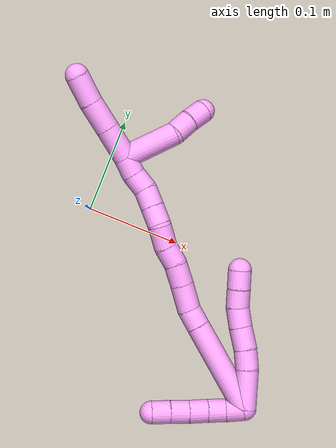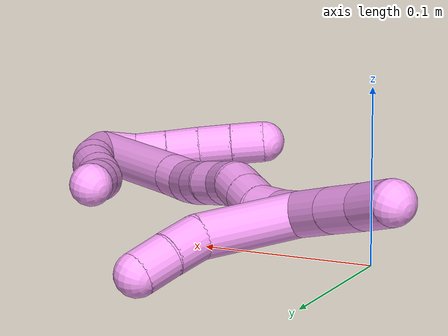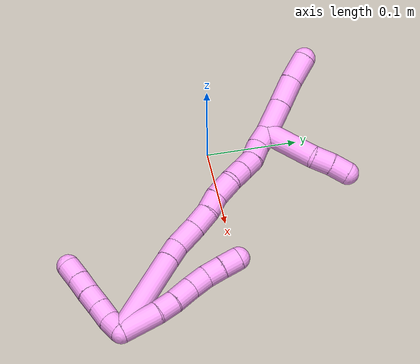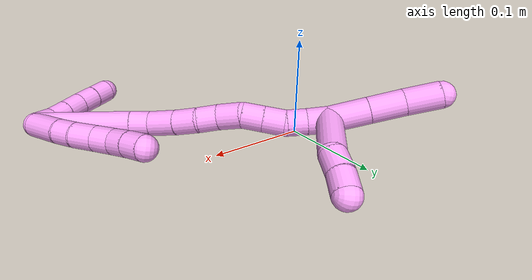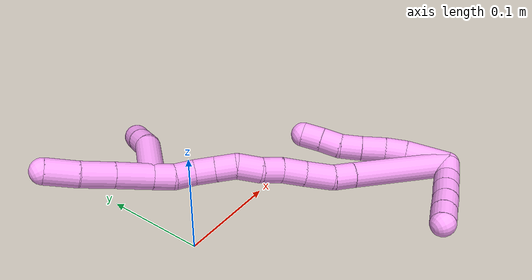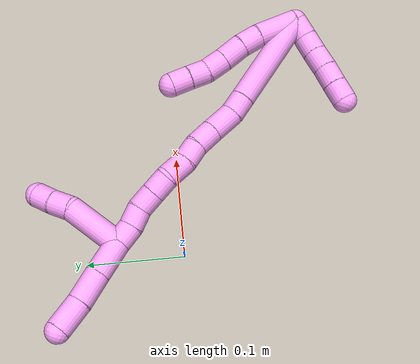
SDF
<sdf version="1.7">
 <world name="default">
  <model name="4">
   <static>0</static>
   <link name="4">
    <collision name="collision-cylinder-e_1_2_8">
     <pose>-0.00615 0.015316 -0.013606 -2.29716 -0.29162 0.631888</pose>
     <geometry><cylinder><radius>0.0125</radius><length>0.042779</length></cylinder></geometry>
     <surface>
      <friction><ode><mu>1.16</mu><mu2>1.16</mu2><slip1>0</slip1><slip2>0</slip2></ode></friction>
      <contact><ode><kp>1e+06</kp><kd>1</kd><max_vel>0</max_vel><min_depth>0.001</min_depth></ode></contact>
     </surface>
    </collision>
    <visual name="visual-cylinder-e_1_2_8">
     <pose>-0.00615 0.015316 -0.013606 -2.29716 -0.29162 0.631888</pose>
     <geometry><cylinder><radius>0.0125</radius><length>0.042779</length></cylinder></geometry>
     <material><ambient>1 0.65098 0.996078 1</ambient></material>
    </visual>
    <collision name="collision-cylinder-e_2_8_9">
     <pose>-0.015013 0.037226 -0.035146 -2.44807 -0.257258 0.687446</pose>
     <geometry><cylinder><radius>0.0125</radius><length>0.021336</length></cylinder></geometry>
     <surface>
      <friction><ode><mu>1.16</mu><mu2>1.16</mu2><slip1>0</slip1><slip2>0</slip2></ode></friction>
      <contact><ode><kp>1e+06</kp><kd>1</kd><max_vel>0</max_vel><min_depth>0.001</min_depth></ode></contact>
     </surface>
    </collision>
    <visual name="visual-cylinder-e_2_8_9">
     <pose>-0.015013 0.037226 -0.035146 -2.44807 -0.257258 0.687446</pose>
     <geometry><cylinder><radius>0.0125</radius><length>0.021336</length></cylinder></geometry>
     <material><ambient>1 0.65098 0.996078 1</ambient></material>
    </visual>
    <collision name="collision-cylinder-e_3_9_10">
     <pose>-0.020577 0.050091 -0.053116 -2.58321 -0.236321 0.785207</pose>
     <geometry><cylinder><radius>0.0125</radius><length>0.024344</length></cylinder></geometry>
     <surface>
      <friction><ode><mu>1.16</mu><mu2>1.16</mu2><slip1>0</slip1><slip2>0</slip2></ode></friction>
      <contact><ode><kp>1e+06</kp><kd>1</kd><max_vel>0</max_vel><min_depth>0.001</min_depth></ode></contact>
     </surface>
    </collision>
    <visual name="visual-cylinder-e_3_9_10">
     <pose>-0.020577 0.050091 -0.053116 -2.58321 -0.236321 0.785207</pose>
     <geometry><cylinder><radius>0.0125</radius><length>0.024344</length></cylinder></geometry>
     <material><ambient>1 0.65098 0.996078 1</ambient></material>
    </visual>
    <collision name="collision-cylinder-e_4_10_11">
     <pose>-0.026132 0.062373 -0.071548 -2.52014 -0.256162 0.762805</pose>
     <geometry><cylinder><radius>0.0125</radius><length>0.02135</length></cylinder></geometry>
     <surface>
      <friction><ode><mu>1.16</mu><mu2>1.16</mu2><slip1>0</slip1><slip2>0</slip2></ode></friction>
      <contact><ode><kp>1e+06</kp><kd>1</kd><max_vel>0</max_vel><min_depth>0.001</min_depth></ode></contact>
     </surface>
    </collision>
    <visual name="visual-cylinder-e_4_10_11">
     <pose>-0.026132 0.062373 -0.071548 -2.52014 -0.256162 0.762805</pose>
     <geometry><cylinder><radius>0.0125</radius><length>0.02135</length></cylinder></geometry>
     <material><ambient>1 0.65098 0.996078 1</ambient></material>
    </visual>
    <collision name="collision-cylinder-e_5_11_12">
     <pose>-0.032402 0.075412 -0.086109 -2.29095 -0.364415 0.772647</pose>
     <geometry><cylinder><radius>0.0125</radius><length>0.02001</length></cylinder></geometry>
     <surface>
      <friction><ode><mu>1.16</mu><mu2>1.16</mu2><slip1>0</slip1><slip2>0</slip2></ode></friction>
      <contact><ode><kp>1e+06</kp><kd>1</kd><max_vel>0</max_vel><min_depth>0.001</min_depth></ode></contact>
     </surface>
    </collision>
    <visual name="visual-cylinder-e_5_11_12">
     <pose>-0.032402 0.075412 -0.086109 -2.29095 -0.364415 0.772647</pose>
     <geometry><cylinder><radius>0.0125</radius><length>0.02001</length></cylinder></geometry>
     <material><ambient>1 0.65098 0.996078 1</ambient></material>
    </visual>
    <collision name="collision-cylinder-e_6_12_6">
     <pose>-0.039057 0.089584 -0.098695 -2.3029 -0.311123 0.676558</pose>
     <geometry><cylinder><radius>0.0125</radius><length>0.020181</length></cylinder></geometry>
     <surface>
      <friction><ode><mu>1.16</mu><mu2>1.16</mu2><slip1>0</slip1><slip2>0</slip2></ode></friction>
      <contact><ode><kp>1e+06</kp><kd>1</kd><max_vel>0</max_vel><min_depth>0.001</min_depth></ode></contact>
     </surface>
    </collision>
    <visual name="visual-cylinder-e_6_12_6">
     <pose>-0.039057 0.089584 -0.098695 -2.3029 -0.311123 0.676558</pose>
     <geometry><cylinder><radius>0.0125</radius><length>0.020181</length></cylinder></geometry>
     <material><ambient>1 0.65098 0.996078 1</ambient></material>
    </visual>
    <collision name="collision-cylinder-e_1_2_13">
     <pose>0.000445 -0.007661 -0.006412 2.26774 0.044534 0.095298</pose>
     <geometry><cylinder><radius>0.0125</radius><length>0.02</length></cylinder></geometry>
     <surface>
      <friction><ode><mu>1.16</mu><mu2>1.16</mu2><slip1>0</slip1><slip2>0</slip2></ode></friction>
      <contact><ode><kp>1e+06</kp><kd>1</kd><max_vel>0</max_vel><min_depth>0.001</min_depth></ode></contact>
     </surface>
    </collision>
    <visual name="visual-cylinder-e_1_2_13">
     <pose>0.000445 -0.007661 -0.006412 2.26774 0.044534 0.095298</pose>
     <geometry><cylinder><radius>0.0125</radius><length>0.02</length></cylinder></geometry>
     <material><ambient>1 0.65098 0.996078 1</ambient></material>
    </visual>
    <collision name="collision-cylinder-e_2_13_14">
     <pose>-0.000829 -0.022673 -0.019382 2.29914 -0.172792 -0.381912</pose>
     <geometry><cylinder><radius>0.0125</radius><length>0.02</length></cylinder></geometry>
     <surface>
      <friction><ode><mu>1.16</mu><mu2>1.16</mu2><slip1>0</slip1><slip2>0</slip2></ode></friction>
      <contact><ode><kp>1e+06</kp><kd>1</kd><max_vel>0</max_vel><min_depth>0.001</min_depth></ode></contact>
     </surface>
    </collision>
    <visual name="visual-cylinder-e_2_13_14">
     <pose>-0.000829 -0.022673 -0.019382 2.29914 -0.172792 -0.381912</pose>
     <geometry><cylinder><radius>0.0125</radius><length>0.02</length></cylinder></geometry>
     <material><ambient>1 0.65098 0.996078 1</ambient></material>
    </visual>
    <collision name="collision-cylinder-e_3_14_15">
     <pose>-0.004305 -0.037581 -0.032249 2.26649 -0.176585 -0.374049</pose>
     <geometry><cylinder><radius>0.0125</radius><length>0.02</length></cylinder></geometry>
     <surface>
      <friction><ode><mu>1.16</mu><mu2>1.16</mu2><slip1>0</slip1><slip2>0</slip2></ode></friction>
      <contact><ode><kp>1e+06</kp><kd>1</kd><max_vel>0</max_vel><min_depth>0.001</min_depth></ode></contact>
     </surface>
    </collision>
    <visual name="visual-cylinder-e_3_14_15">
     <pose>-0.004305 -0.037581 -0.032249 2.26649 -0.176585 -0.374049</pose>
     <geometry><cylinder><radius>0.0125</radius><length>0.02</length></cylinder></geometry>
     <material><ambient>1 0.65098 0.996078 1</ambient></material>
    </visual>
    <collision name="collision-cylinder-e_4_15_16">
     <pose>-0.007774 -0.052363 -0.045257 2.31837 -0.172096 -0.390171</pose>
     <geometry><cylinder><radius>0.0125</radius><length>0.02</length></cylinder></geometry>
     <surface>
      <friction><ode><mu>1.16</mu><mu2>1.16</mu2><slip1>0</slip1><slip2>0</slip2></ode></friction>
      <contact><ode><kp>1e+06</kp><kd>1</kd><max_vel>0</max_vel><min_depth>0.001</min_depth></ode></contact>
     </surface>
    </collision>
    <visual name="visual-cylinder-e_4_15_16">
     <pose>-0.007774 -0.052363 -0.045257 2.31837 -0.172096 -0.390171</pose>
     <geometry><cylinder><radius>0.0125</radius><length>0.02</length></cylinder></geometry>
     <material><ambient>1 0.65098 0.996078 1</ambient></material>
    </visual>
    <collision name="collision-cylinder-e_5_16_5">
     <pose>-0.010967 -0.066995 -0.058508 2.29512 -0.148558 -0.327442</pose>
     <geometry><cylinder><radius>0.0125</radius><length>0.02</length></cylinder></geometry>
     <surface>
      <friction><ode><mu>1.16</mu><mu2>1.16</mu2><slip1>0</slip1><slip2>0</slip2></ode></friction>
      <contact><ode><kp>1e+06</kp><kd>1</kd><max_vel>0</max_vel><min_depth>0.001</min_depth></ode></contact>
     </surface>
    </collision>
    <visual name="visual-cylinder-e_5_16_5">
     <pose>-0.010967 -0.066995 -0.058508 2.29512 -0.148558 -0.327442</pose>
     <geometry><cylinder><radius>0.0125</radius><length>0.02</length></cylinder></geometry>
     <material><ambient>1 0.65098 0.996078 1</ambient></material>
    </visual>
    <collision name="collision-cylinder-e_1_2_17">
     <pose>-0.012926 0.012258 -0.047391 -2.88849 -0.258158 1.59078</pose>
     <geometry><cylinder><radius>0.0125</radius><length>0.101258</length></cylinder></geometry>
     <surface>
      <friction><ode><mu>1.16</mu><mu2>1.16</mu2><slip1>0</slip1><slip2>0</slip2></ode></friction>
      <contact><ode><kp>1e+06</kp><kd>1</kd><max_vel>0</max_vel><min_depth>0.001</min_depth></ode></contact>
     </surface>
    </collision>
    <visual name="visual-cylinder-e_1_2_17">
     <pose>-0.012926 0.012258 -0.047391 -2.88849 -0.258158 1.59078</pose>
     <geometry><cylinder><radius>0.0125</radius><length>0.101258</length></cylinder></geometry>
     <material><ambient>1 0.65098 0.996078 1</ambient></material>
    </visual>
    <collision name="collision-cylinder-e_2_17_18">
     <pose>-0.028219 0.02708 -0.10434 -2.87947 -0.234931 1.46038</pose>
     <geometry><cylinder><radius>0.0125</radius><length>0.020349</length></cylinder></geometry>
     <surface>
      <friction><ode><mu>1.16</mu><mu2>1.16</mu2><slip1>0</slip1><slip2>0</slip2></ode></friction>
      <contact><ode><kp>1e+06</kp><kd>1</kd><max_vel>0</max_vel><min_depth>0.001</min_depth></ode></contact>
     </surface>
    </collision>
    <visual name="visual-cylinder-e_2_17_18">
     <pose>-0.028219 0.02708 -0.10434 -2.87947 -0.234931 1.46038</pose>
     <geometry><cylinder><radius>0.0125</radius><length>0.020349</length></cylinder></geometry>
     <material><ambient>1 0.65098 0.996078 1</ambient></material>
    </visual>
    <collision name="collision-cylinder-e_3_18_19">
     <pose>-0.036046 0.035978 -0.125575 -2.64462 -0.389819 1.32242</pose>
     <geometry><cylinder><radius>0.0125</radius><length>0.028724</length></cylinder></geometry>
     <surface>
      <friction><ode><mu>1.16</mu><mu2>1.16</mu2><slip1>0</slip1><slip2>0</slip2></ode></friction>
      <contact><ode><kp>1e+06</kp><kd>1</kd><max_vel>0</max_vel><min_depth>0.001</min_depth></ode></contact>
     </surface>
    </collision>
    <visual name="visual-cylinder-e_3_18_19">
     <pose>-0.036046 0.035978 -0.125575 -2.64462 -0.389819 1.32242</pose>
     <geometry><cylinder><radius>0.0125</radius><length>0.028724</length></cylinder></geometry>
     <material><ambient>1 0.65098 0.996078 1</ambient></material>
    </visual>
    <collision name="collision-cylinder-e_4_19_20">
     <pose>-0.046494 0.047061 -0.146774 -2.67888 -0.438522 1.51527</pose>
     <geometry><cylinder><radius>0.0125</radius><length>0.023506</length></cylinder></geometry>
     <surface>
      <friction><ode><mu>1.16</mu><mu2>1.16</mu2><slip1>0</slip1><slip2>0</slip2></ode></friction>
      <contact><ode><kp>1e+06</kp><kd>1</kd><max_vel>0</max_vel><min_depth>0.001</min_depth></ode></contact>
     </surface>
    </collision>
    <visual name="visual-cylinder-e_4_19_20">
     <pose>-0.046494 0.047061 -0.146774 -2.67888 -0.438522 1.51527</pose>
     <geometry><cylinder><radius>0.0125</radius><length>0.023506</length></cylinder></geometry>
     <material><ambient>1 0.65098 0.996078 1</ambient></material>
    </visual>
    <collision name="collision-cylinder-e_5_20_21">
     <pose>-0.055363 0.053925 -0.165454 -2.91467 -0.391437 2.09828</pose>
     <geometry><cylinder><radius>0.0125</radius><length>0.020336</length></cylinder></geometry>
     <surface>
      <friction><ode><mu>1.16</mu><mu2>1.16</mu2><slip1>0</slip1><slip2>0</slip2></ode></friction>
      <contact><ode><kp>1e+06</kp><kd>1</kd><max_vel>0</max_vel><min_depth>0.001</min_depth></ode></contact>
     </surface>
    </collision>
    <visual name="visual-cylinder-e_5_20_21">
     <pose>-0.055363 0.053925 -0.165454 -2.91467 -0.391437 2.09828</pose>
     <geometry><cylinder><radius>0.0125</radius><length>0.020336</length></cylinder></geometry>
     <material><ambient>1 0.65098 0.996078 1</ambient></material>
    </visual>
    <collision name="collision-cylinder-e_6_21_22">
     <pose>-0.064246 0.061285 -0.184296 -2.64526 -0.426421 1.4141</pose>
     <geometry><cylinder><radius>0.0125</radius><length>0.024194</length></cylinder></geometry>
     <surface>
      <friction><ode><mu>1.16</mu><mu2>1.16</mu2><slip1>0</slip1><slip2>0</slip2></ode></friction>
      <contact><ode><kp>1e+06</kp><kd>1</kd><max_vel>0</max_vel><min_depth>0.001</min_depth></ode></contact>
     </surface>
    </collision>
    <visual name="visual-cylinder-e_6_21_22">
     <pose>-0.064246 0.061285 -0.184296 -2.64526 -0.426421 1.4141</pose>
     <geometry><cylinder><radius>0.0125</radius><length>0.024194</length></cylinder></geometry>
     <material><ambient>1 0.65098 0.996078 1</ambient></material>
    </visual>
    <collision name="collision-cylinder-e_7_22_23">
     <pose>-0.070297 0.070466 -0.203346 -2.74368 -0.102714 0.499243</pose>
     <geometry><cylinder><radius>0.0125</radius><length>0.020424</length></cylinder></geometry>
     <surface>
      <friction><ode><mu>1.16</mu><mu2>1.16</mu2><slip1>0</slip1><slip2>0</slip2></ode></friction>
      <contact><ode><kp>1e+06</kp><kd>1</kd><max_vel>0</max_vel><min_depth>0.001</min_depth></ode></contact>
     </surface>
    </collision>
    <visual name="visual-cylinder-e_7_22_23">
     <pose>-0.070297 0.070466 -0.203346 -2.74368 -0.102714 0.499243</pose>
     <geometry><cylinder><radius>0.0125</radius><length>0.020424</length></cylinder></geometry>
     <material><ambient>1 0.65098 0.996078 1</ambient></material>
    </visual>
    <collision name="collision-cylinder-e_8_23_24">
     <pose>-0.072381 0.078342 -0.222163 -2.74668 -0.100957 0.494707</pose>
     <geometry><cylinder><radius>0.0125</radius><length>0.020588</length></cylinder></geometry>
     <surface>
      <friction><ode><mu>1.16</mu><mu2>1.16</mu2><slip1>0</slip1><slip2>0</slip2></ode></friction>
      <contact><ode><kp>1e+06</kp><kd>1</kd><max_vel>0</max_vel><min_depth>0.001</min_depth></ode></contact>
     </surface>
    </collision>
    <visual name="visual-cylinder-e_8_23_24">
     <pose>-0.072381 0.078342 -0.222163 -2.74668 -0.100957 0.494707</pose>
     <geometry><cylinder><radius>0.0125</radius><length>0.020588</length></cylinder></geometry>
     <material><ambient>1 0.65098 0.996078 1</ambient></material>
    </visual>
    <collision name="collision-cylinder-e_9_24_25">
     <pose>-0.075782 0.083156 -0.241358 -3.0522 -0.237101 2.42314</pose>
     <geometry><cylinder><radius>0.0125</radius><length>0.020125</length></cylinder></geometry>
     <surface>
      <friction><ode><mu>1.16</mu><mu2>1.16</mu2><slip1>0</slip1><slip2>0</slip2></ode></friction>
      <contact><ode><kp>1e+06</kp><kd>1</kd><max_vel>0</max_vel><min_depth>0.001</min_depth></ode></contact>
     </surface>
    </collision>
    <visual name="visual-cylinder-e_9_24_25">
     <pose>-0.075782 0.083156 -0.241358 -3.0522 -0.237101 2.42314</pose>
     <geometry><cylinder><radius>0.0125</radius><length>0.020125</length></cylinder></geometry>
     <material><ambient>1 0.65098 0.996078 1</ambient></material>
    </visual>
    <collision name="collision-cylinder-e_10_25_1">
     <pose>-0.081967 0.086915 -0.260161 -2.83322 -0.382098 1.78775</pose>
     <geometry><cylinder><radius>0.0125</radius><length>0.020497</length></cylinder></geometry>
     <surface>
      <friction><ode><mu>1.16</mu><mu2>1.16</mu2><slip1>0</slip1><slip2>0</slip2></ode></friction>
      <contact><ode><kp>1e+06</kp><kd>1</kd><max_vel>0</max_vel><min_depth>0.001</min_depth></ode></contact>
     </surface>
    </collision>
    <visual name="visual-cylinder-e_10_25_1">
     <pose>-0.081967 0.086915 -0.260161 -2.83322 -0.382098 1.78775</pose>
     <geometry><cylinder><radius>0.0125</radius><length>0.020497</length></cylinder></geometry>
     <material><ambient>1 0.65098 0.996078 1</ambient></material>
    </visual>
    <collision name="collision-cylinder-e_1_1_26">
     <pose>-0.083306 0.117577 -0.260854 -1.27817 0.085354 -0.063446</pose>
     <geometry><cylinder><radius>0.0125</radius><length>0.05823</length></cylinder></geometry>
     <surface>
      <friction><ode><mu>1.16</mu><mu2>1.16</mu2><slip1>0</slip1><slip2>0</slip2></ode></friction>
      <contact><ode><kp>1e+06</kp><kd>1</kd><max_vel>0</max_vel><min_depth>0.001</min_depth></ode></contact>
     </surface>
    </collision>
    <visual name="visual-cylinder-e_1_1_26">
     <pose>-0.083306 0.117577 -0.260854 -1.27817 0.085354 -0.063446</pose>
     <geometry><cylinder><radius>0.0125</radius><length>0.05823</length></cylinder></geometry>
     <material><ambient>1 0.65098 0.996078 1</ambient></material>
    </visual>
    <collision name="collision-cylinder-e_2_26_27">
     <pose>-0.078514 0.155827 -0.252659 -1.58737 0.217087 -0.220685</pose>
     <geometry><cylinder><radius>0.0125</radius><length>0.021454</length></cylinder></geometry>
     <surface>
      <friction><ode><mu>1.16</mu><mu2>1.16</mu2><slip1>0</slip1><slip2>0</slip2></ode></friction>
      <contact><ode><kp>1e+06</kp><kd>1</kd><max_vel>0</max_vel><min_depth>0.001</min_depth></ode></contact>
     </surface>
    </collision>
    <visual name="visual-cylinder-e_2_26_27">
     <pose>-0.078514 0.155827 -0.252659 -1.58737 0.217087 -0.220685</pose>
     <geometry><cylinder><radius>0.0125</radius><length>0.021454</length></cylinder></geometry>
     <material><ambient>1 0.65098 0.996078 1</ambient></material>
    </visual>
    <collision name="collision-cylinder-e_3_27_4">
     <pose>-0.07312 0.175966 -0.252333 -1.51909 0.30846 -0.293136</pose>
     <geometry><cylinder><radius>0.0125</radius><length>0.020316</length></cylinder></geometry>
     <surface>
      <friction><ode><mu>1.16</mu><mu2>1.16</mu2><slip1>0</slip1><slip2>0</slip2></ode></friction>
      <contact><ode><kp>1e+06</kp><kd>1</kd><max_vel>0</max_vel><min_depth>0.001</min_depth></ode></contact>
     </surface>
    </collision>
    <visual name="visual-cylinder-e_3_27_4">
     <pose>-0.07312 0.175966 -0.252333 -1.51909 0.30846 -0.293136</pose>
     <geometry><cylinder><radius>0.0125</radius><length>0.020316</length></cylinder></geometry>
     <material><ambient>1 0.65098 0.996078 1</ambient></material>
    </visual>
    <collision name="collision-cylinder-e_1_1_28">
     <pose>-0.09402 0.092904 -0.285065 -2.94819 -0.471504 2.37402</pose>
     <geometry><cylinder><radius>0.0125</radius><length>0.036243</length></cylinder></geometry>
     <surface>
      <friction><ode><mu>1.16</mu><mu2>1.16</mu2><slip1>0</slip1><slip2>0</slip2></ode></friction>
      <contact><ode><kp>1e+06</kp><kd>1</kd><max_vel>0</max_vel><min_depth>0.001</min_depth></ode></contact>
     </surface>
    </collision>
    <visual name="visual-cylinder-e_1_1_28">
     <pose>-0.09402 0.092904 -0.285065 -2.94819 -0.471504 2.37402</pose>
     <geometry><cylinder><radius>0.0125</radius><length>0.036243</length></cylinder></geometry>
     <material><ambient>1 0.65098 0.996078 1</ambient></material>
    </visual>
    <collision name="collision-cylinder-e_2_28_29">
     <pose>-0.109396 0.098531 -0.31497 -2.96397 -0.463733 2.4203</pose>
     <geometry><cylinder><radius>0.0125</radius><length>0.031948</length></cylinder></geometry>
     <surface>
      <friction><ode><mu>1.16</mu><mu2>1.16</mu2><slip1>0</slip1><slip2>0</slip2></ode></friction>
      <contact><ode><kp>1e+06</kp><kd>1</kd><max_vel>0</max_vel><min_depth>0.001</min_depth></ode></contact>
     </surface>
    </collision>
    <visual name="visual-cylinder-e_2_28_29">
     <pose>-0.109396 0.098531 -0.31497 -2.96397 -0.463733 2.4203</pose>
     <geometry><cylinder><radius>0.0125</radius><length>0.031948</length></cylinder></geometry>
     <material><ambient>1 0.65098 0.996078 1</ambient></material>
    </visual>
    <collision name="collision-cylinder-e_3_29_3">
     <pose>-0.123928 0.104981 -0.342559 -2.85915 -0.483045 2.0947</pose>
     <geometry><cylinder><radius>0.0125</radius><length>0.03181</length></cylinder></geometry>
     <surface>
      <friction><ode><mu>1.16</mu><mu2>1.16</mu2><slip1>0</slip1><slip2>0</slip2></ode></friction>
      <contact><ode><kp>1e+06</kp><kd>1</kd><max_vel>0</max_vel><min_depth>0.001</min_depth></ode></contact>
     </surface>
    </collision>
    <visual name="visual-cylinder-e_3_29_3">
     <pose>-0.123928 0.104981 -0.342559 -2.85915 -0.483045 2.0947</pose>
     <geometry><cylinder><radius>0.0125</radius><length>0.03181</length></cylinder></geometry>
     <material><ambient>1 0.65098 0.996078 1</ambient></material>
    </visual>
    <collision name="collision-sphere-3">
     <pose>-0.131316 0.108907 -0.356086 0 -0 0</pose>
     <geometry><sphere><radius>0.0125</radius></sphere></geometry>
     <surface>
      <friction><ode><mu>1.16</mu><mu2>1.16</mu2><slip1>0</slip1><slip2>0</slip2></ode></friction>
      <contact><ode><kp>1e+06</kp><kd>1</kd><max_vel>0</max_vel><min_depth>0.001</min_depth></ode></contact>
     </surface>
    </collision>
    <visual name="visual-sphere-3">
     <pose>-0.131316 0.108907 -0.356086 0 -0 0</pose>
     <geometry><sphere><radius>0.0125</radius></sphere></geometry>
     <material><ambient>1 0.65098 0.996078 1</ambient></material>
    </visual>
    <collision name="collision-sphere-29">
     <pose>-0.116541 0.101056 -0.329032 0 -0 0</pose>
     <geometry><sphere><radius>0.0125</radius></sphere></geometry>
     <surface>
      <friction><ode><mu>1.16</mu><mu2>1.16</mu2><slip1>0</slip1><slip2>0</slip2></ode></friction>
      <contact><ode><kp>1e+06</kp><kd>1</kd><max_vel>0</max_vel><min_depth>0.001</min_depth></ode></contact>
     </surface>
    </collision>
    <visual name="visual-sphere-29">
     <pose>-0.116541 0.101056 -0.329032 0 -0 0</pose>
     <geometry><sphere><radius>0.0125</radius></sphere></geometry>
     <material><ambient>1 0.65098 0.996078 1</ambient></material>
    </visual>
    <collision name="collision-sphere-28">
     <pose>-0.102251 0.096007 -0.300908 0 -0 0</pose>
     <geometry><sphere><radius>0.0125</radius></sphere></geometry>
     <surface>
      <friction><ode><mu>1.16</mu><mu2>1.16</mu2><slip1>0</slip1><slip2>0</slip2></ode></friction>
      <contact><ode><kp>1e+06</kp><kd>1</kd><max_vel>0</max_vel><min_depth>0.001</min_depth></ode></contact>
     </surface>
    </collision>
    <visual name="visual-sphere-28">
     <pose>-0.102251 0.096007 -0.300908 0 -0 0</pose>
     <geometry><sphere><radius>0.0125</radius></sphere></geometry>
     <material><ambient>1 0.65098 0.996078 1</ambient></material>
    </visual>
    <collision name="collision-sphere-4">
     <pose>-0.070036 0.185632 -0.251832 0 -0 0</pose>
     <geometry><sphere><radius>0.0125</radius></sphere></geometry>
     <surface>
      <friction><ode><mu>1.16</mu><mu2>1.16</mu2><slip1>0</slip1><slip2>0</slip2></ode></friction>
      <contact><ode><kp>1e+06</kp><kd>1</kd><max_vel>0</max_vel><min_depth>0.001</min_depth></ode></contact>
     </surface>
    </collision>
    <visual name="visual-sphere-4">
     <pose>-0.070036 0.185632 -0.251832 0 -0 0</pose>
     <geometry><sphere><radius>0.0125</radius></sphere></geometry>
     <material><ambient>1 0.65098 0.996078 1</ambient></material>
    </visual>
    <collision name="collision-sphere-27">
     <pose>-0.076203 0.166301 -0.252833 0 -0 0</pose>
     <geometry><sphere><radius>0.0125</radius></sphere></geometry>
     <surface>
      <friction><ode><mu>1.16</mu><mu2>1.16</mu2><slip1>0</slip1><slip2>0</slip2></ode></friction>
      <contact><ode><kp>1e+06</kp><kd>1</kd><max_vel>0</max_vel><min_depth>0.001</min_depth></ode></contact>
     </surface>
    </collision>
    <visual name="visual-sphere-27">
     <pose>-0.076203 0.166301 -0.252833 0 -0 0</pose>
     <geometry><sphere><radius>0.0125</radius></sphere></geometry>
     <material><ambient>1 0.65098 0.996078 1</ambient></material>
    </visual>
    <collision name="collision-sphere-26">
     <pose>-0.080824 0.145353 -0.252486 0 -0 0</pose>
     <geometry><sphere><radius>0.0125</radius></sphere></geometry>
     <surface>
      <friction><ode><mu>1.16</mu><mu2>1.16</mu2><slip1>0</slip1><slip2>0</slip2></ode></friction>
      <contact><ode><kp>1e+06</kp><kd>1</kd><max_vel>0</max_vel><min_depth>0.001</min_depth></ode></contact>
     </surface>
    </collision>
    <visual name="visual-sphere-26">
     <pose>-0.080824 0.145353 -0.252486 0 -0 0</pose>
     <geometry><sphere><radius>0.0125</radius></sphere></geometry>
     <material><ambient>1 0.65098 0.996078 1</ambient></material>
    </visual>
    <collision name="collision-sphere-1">
     <pose>-0.085788 0.089801 -0.269222 0 -0 0</pose>
     <geometry><sphere><radius>0.0125</radius></sphere></geometry>
     <surface>
      <friction><ode><mu>1.16</mu><mu2>1.16</mu2><slip1>0</slip1><slip2>0</slip2></ode></friction>
      <contact><ode><kp>1e+06</kp><kd>1</kd><max_vel>0</max_vel><min_depth>0.001</min_depth></ode></contact>
     </surface>
    </collision>
    <visual name="visual-sphere-1">
     <pose>-0.085788 0.089801 -0.269222 0 -0 0</pose>
     <geometry><sphere><radius>0.0125</radius></sphere></geometry>
     <material><ambient>1 0.65098 0.996078 1</ambient></material>
    </visual>
    <collision name="collision-sphere-25">
     <pose>-0.078146 0.084029 -0.2511 0 -0 0</pose>
     <geometry><sphere><radius>0.0125</radius></sphere></geometry>
     <surface>
      <friction><ode><mu>1.16</mu><mu2>1.16</mu2><slip1>0</slip1><slip2>0</slip2></ode></friction>
      <contact><ode><kp>1e+06</kp><kd>1</kd><max_vel>0</max_vel><min_depth>0.001</min_depth></ode></contact>
     </surface>
    </collision>
    <visual name="visual-sphere-25">
     <pose>-0.078146 0.084029 -0.2511 0 -0 0</pose>
     <geometry><sphere><radius>0.0125</radius></sphere></geometry>
     <material><ambient>1 0.65098 0.996078 1</ambient></material>
    </visual>
    <collision name="collision-sphere-24">
     <pose>-0.073419 0.082283 -0.231617 0 -0 0</pose>
     <geometry><sphere><radius>0.0125</radius></sphere></geometry>
     <surface>
      <friction><ode><mu>1.16</mu><mu2>1.16</mu2><slip1>0</slip1><slip2>0</slip2></ode></friction>
      <contact><ode><kp>1e+06</kp><kd>1</kd><max_vel>0</max_vel><min_depth>0.001</min_depth></ode></contact>
     </surface>
    </collision>
    <visual name="visual-sphere-24">
     <pose>-0.073419 0.082283 -0.231617 0 -0 0</pose>
     <geometry><sphere><radius>0.0125</radius></sphere></geometry>
     <material><ambient>1 0.65098 0.996078 1</ambient></material>
    </visual>
    <collision name="collision-sphere-23">
     <pose>-0.071344 0.074402 -0.21271 0 -0 0</pose>
     <geometry><sphere><radius>0.0125</radius></sphere></geometry>
     <surface>
      <friction><ode><mu>1.16</mu><mu2>1.16</mu2><slip1>0</slip1><slip2>0</slip2></ode></friction>
      <contact><ode><kp>1e+06</kp><kd>1</kd><max_vel>0</max_vel><min_depth>0.001</min_depth></ode></contact>
     </surface>
    </collision>
    <visual name="visual-sphere-23">
     <pose>-0.071344 0.074402 -0.21271 0 -0 0</pose>
     <geometry><sphere><radius>0.0125</radius></sphere></geometry>
     <material><ambient>1 0.65098 0.996078 1</ambient></material>
    </visual>
    <collision name="collision-sphere-22">
     <pose>-0.06925 0.06653 -0.193981 0 -0 0</pose>
     <geometry><sphere><radius>0.0125</radius></sphere></geometry>
     <surface>
      <friction><ode><mu>1.16</mu><mu2>1.16</mu2><slip1>0</slip1><slip2>0</slip2></ode></friction>
      <contact><ode><kp>1e+06</kp><kd>1</kd><max_vel>0</max_vel><min_depth>0.001</min_depth></ode></contact>
     </surface>
    </collision>
    <visual name="visual-sphere-22">
     <pose>-0.06925 0.06653 -0.193981 0 -0 0</pose>
     <geometry><sphere><radius>0.0125</radius></sphere></geometry>
     <material><ambient>1 0.65098 0.996078 1</ambient></material>
    </visual>
    <collision name="collision-sphere-21">
     <pose>-0.059243 0.05604 -0.174612 0 -0 0</pose>
     <geometry><sphere><radius>0.0125</radius></sphere></geometry>
     <surface>
      <friction><ode><mu>1.16</mu><mu2>1.16</mu2><slip1>0</slip1><slip2>0</slip2></ode></friction>
      <contact><ode><kp>1e+06</kp><kd>1</kd><max_vel>0</max_vel><min_depth>0.001</min_depth></ode></contact>
     </surface>
    </collision>
    <visual name="visual-sphere-21">
     <pose>-0.059243 0.05604 -0.174612 0 -0 0</pose>
     <geometry><sphere><radius>0.0125</radius></sphere></geometry>
     <material><ambient>1 0.65098 0.996078 1</ambient></material>
    </visual>
    <collision name="collision-sphere-12">
     <pose>-0.035968 0.082439 -0.092274 0 -0 0</pose>
     <geometry><sphere><radius>0.0125</radius></sphere></geometry>
     <surface>
      <friction><ode><mu>1.16</mu><mu2>1.16</mu2><slip1>0</slip1><slip2>0</slip2></ode></friction>
      <contact><ode><kp>1e+06</kp><kd>1</kd><max_vel>0</max_vel><min_depth>0.001</min_depth></ode></contact>
     </surface>
    </collision>
    <visual name="visual-sphere-12">
     <pose>-0.035968 0.082439 -0.092274 0 -0 0</pose>
     <geometry><sphere><radius>0.0125</radius></sphere></geometry>
     <material><ambient>1 0.65098 0.996078 1</ambient></material>
    </visual>
    <collision name="collision-sphere-11">
     <pose>-0.028837 0.068385 -0.079944 0 -0 0</pose>
     <geometry><sphere><radius>0.0125</radius></sphere></geometry>
     <surface>
      <friction><ode><mu>1.16</mu><mu2>1.16</mu2><slip1>0</slip1><slip2>0</slip2></ode></friction>
      <contact><ode><kp>1e+06</kp><kd>1</kd><max_vel>0</max_vel><min_depth>0.001</min_depth></ode></contact>
     </surface>
    </collision>
    <visual name="visual-sphere-11">
     <pose>-0.028837 0.068385 -0.079944 0 -0 0</pose>
     <geometry><sphere><radius>0.0125</radius></sphere></geometry>
     <material><ambient>1 0.65098 0.996078 1</ambient></material>
    </visual>
    <collision name="collision-sphere-10">
     <pose>-0.023427 0.056361 -0.063152 0 -0 0</pose>
     <geometry><sphere><radius>0.0125</radius></sphere></geometry>
     <surface>
      <friction><ode><mu>1.16</mu><mu2>1.16</mu2><slip1>0</slip1><slip2>0</slip2></ode></friction>
      <contact><ode><kp>1e+06</kp><kd>1</kd><max_vel>0</max_vel><min_depth>0.001</min_depth></ode></contact>
     </surface>
    </collision>
    <visual name="visual-sphere-10">
     <pose>-0.023427 0.056361 -0.063152 0 -0 0</pose>
     <geometry><sphere><radius>0.0125</radius></sphere></geometry>
     <material><ambient>1 0.65098 0.996078 1</ambient></material>
    </visual>
    <collision name="collision-sphere-9">
     <pose>-0.017728 0.043821 -0.04308 0 -0 0</pose>
     <geometry><sphere><radius>0.0125</radius></sphere></geometry>
     <surface>
      <friction><ode><mu>1.16</mu><mu2>1.16</mu2><slip1>0</slip1><slip2>0</slip2></ode></friction>
      <contact><ode><kp>1e+06</kp><kd>1</kd><max_vel>0</max_vel><min_depth>0.001</min_depth></ode></contact>
     </surface>
    </collision>
    <visual name="visual-sphere-9">
     <pose>-0.017728 0.043821 -0.04308 0 -0 0</pose>
     <geometry><sphere><radius>0.0125</radius></sphere></geometry>
     <material><ambient>1 0.65098 0.996078 1</ambient></material>
    </visual>
    <collision name="collision-sphere-2">
     <geometry><sphere><radius>0.0125</radius></sphere></geometry>
     <surface>
      <friction><ode><mu>1.16</mu><mu2>1.16</mu2><slip1>0</slip1><slip2>0</slip2></ode></friction>
      <contact><ode><kp>1e+06</kp><kd>1</kd><max_vel>0</max_vel><min_depth>0.001</min_depth></ode></contact>
     </surface>
    </collision>
    <visual name="visual-sphere-2">
     <geometry><sphere><radius>0.0125</radius></sphere></geometry>
     <material><ambient>1 0.65098 0.996078 1</ambient></material>
    </visual>
    <collision name="collision-sphere-19">
     <pose>-0.041504 0.042311 -0.137252 0 -0 0</pose>
     <geometry><sphere><radius>0.0125</radius></sphere></geometry>
     <surface>
      <friction><ode><mu>1.16</mu><mu2>1.16</mu2><slip1>0</slip1><slip2>0</slip2></ode></friction>
      <contact><ode><kp>1e+06</kp><kd>1</kd><max_vel>0</max_vel><min_depth>0.001</min_depth></ode></contact>
     </surface>
    </collision>
    <visual name="visual-sphere-19">
     <pose>-0.041504 0.042311 -0.137252 0 -0 0</pose>
     <geometry><sphere><radius>0.0125</radius></sphere></geometry>
     <material><ambient>1 0.65098 0.996078 1</ambient></material>
    </visual>
    <collision name="collision-sphere-8">
     <pose>-0.012299 0.030631 -0.027212 0 -0 0</pose>
     <geometry><sphere><radius>0.0125</radius></sphere></geometry>
     <surface>
      <friction><ode><mu>1.16</mu><mu2>1.16</mu2><slip1>0</slip1><slip2>0</slip2></ode></friction>
      <contact><ode><kp>1e+06</kp><kd>1</kd><max_vel>0</max_vel><min_depth>0.001</min_depth></ode></contact>
     </surface>
    </collision>
    <visual name="visual-sphere-8">
     <pose>-0.012299 0.030631 -0.027212 0 -0 0</pose>
     <geometry><sphere><radius>0.0125</radius></sphere></geometry>
     <material><ambient>1 0.65098 0.996078 1</ambient></material>
    </visual>
    <collision name="collision-sphere-6">
     <pose>-0.042146 0.096729 -0.105116 0 -0 0</pose>
     <geometry><sphere><radius>0.0125</radius></sphere></geometry>
     <surface>
      <friction><ode><mu>1.16</mu><mu2>1.16</mu2><slip1>0</slip1><slip2>0</slip2></ode></friction>
      <contact><ode><kp>1e+06</kp><kd>1</kd><max_vel>0</max_vel><min_depth>0.001</min_depth></ode></contact>
     </surface>
    </collision>
    <visual name="visual-sphere-6">
     <pose>-0.042146 0.096729 -0.105116 0 -0 0</pose>
     <geometry><sphere><radius>0.0125</radius></sphere></geometry>
     <material><ambient>1 0.65098 0.996078 1</ambient></material>
    </visual>
    <collision name="collision-sphere-13">
     <pose>0.00089 -0.015321 -0.012825 0 -0 0</pose>
     <geometry><sphere><radius>0.0125</radius></sphere></geometry>
     <surface>
      <friction><ode><mu>1.16</mu><mu2>1.16</mu2><slip1>0</slip1><slip2>0</slip2></ode></friction>
      <contact><ode><kp>1e+06</kp><kd>1</kd><max_vel>0</max_vel><min_depth>0.001</min_depth></ode></contact>
     </surface>
    </collision>
    <visual name="visual-sphere-13">
     <pose>0.00089 -0.015321 -0.012825 0 -0 0</pose>
     <geometry><sphere><radius>0.0125</radius></sphere></geometry>
     <material><ambient>1 0.65098 0.996078 1</ambient></material>
    </visual>
    <collision name="collision-sphere-14">
     <pose>-0.002548 -0.030024 -0.025939 0 -0 0</pose>
     <geometry><sphere><radius>0.0125</radius></sphere></geometry>
     <surface>
      <friction><ode><mu>1.16</mu><mu2>1.16</mu2><slip1>0</slip1><slip2>0</slip2></ode></friction>
      <contact><ode><kp>1e+06</kp><kd>1</kd><max_vel>0</max_vel><min_depth>0.001</min_depth></ode></contact>
     </surface>
    </collision>
    <visual name="visual-sphere-14">
     <pose>-0.002548 -0.030024 -0.025939 0 -0 0</pose>
     <geometry><sphere><radius>0.0125</radius></sphere></geometry>
     <material><ambient>1 0.65098 0.996078 1</ambient></material>
    </visual>
    <collision name="collision-sphere-15">
     <pose>-0.006062 -0.045138 -0.038558 0 -0 0</pose>
     <geometry><sphere><radius>0.0125</radius></sphere></geometry>
     <surface>
      <friction><ode><mu>1.16</mu><mu2>1.16</mu2><slip1>0</slip1><slip2>0</slip2></ode></friction>
      <contact><ode><kp>1e+06</kp><kd>1</kd><max_vel>0</max_vel><min_depth>0.001</min_depth></ode></contact>
     </surface>
    </collision>
    <visual name="visual-sphere-15">
     <pose>-0.006062 -0.045138 -0.038558 0 -0 0</pose>
     <geometry><sphere><radius>0.0125</radius></sphere></geometry>
     <material><ambient>1 0.65098 0.996078 1</ambient></material>
    </visual>
    <collision name="collision-sphere-16">
     <pose>-0.009487 -0.059588 -0.051955 0 -0 0</pose>
     <geometry><sphere><radius>0.0125</radius></sphere></geometry>
     <surface>
      <friction><ode><mu>1.16</mu><mu2>1.16</mu2><slip1>0</slip1><slip2>0</slip2></ode></friction>
      <contact><ode><kp>1e+06</kp><kd>1</kd><max_vel>0</max_vel><min_depth>0.001</min_depth></ode></contact>
     </surface>
    </collision>
    <visual name="visual-sphere-16">
     <pose>-0.009487 -0.059588 -0.051955 0 -0 0</pose>
     <geometry><sphere><radius>0.0125</radius></sphere></geometry>
     <material><ambient>1 0.65098 0.996078 1</ambient></material>
    </visual>
    <collision name="collision-sphere-5">
     <pose>-0.012447 -0.074402 -0.065061 0 -0 0</pose>
     <geometry><sphere><radius>0.0125</radius></sphere></geometry>
     <surface>
      <friction><ode><mu>1.16</mu><mu2>1.16</mu2><slip1>0</slip1><slip2>0</slip2></ode></friction>
      <contact><ode><kp>1e+06</kp><kd>1</kd><max_vel>0</max_vel><min_depth>0.001</min_depth></ode></contact>
     </surface>
    </collision>
    <visual name="visual-sphere-5">
     <pose>-0.012447 -0.074402 -0.065061 0 -0 0</pose>
     <geometry><sphere><radius>0.0125</radius></sphere></geometry>
     <material><ambient>1 0.65098 0.996078 1</ambient></material>
    </visual>
    <collision name="collision-sphere-17">
     <pose>-0.025851 0.024516 -0.094783 0 -0 0</pose>
     <geometry><sphere><radius>0.0125</radius></sphere></geometry>
     <surface>
      <friction><ode><mu>1.16</mu><mu2>1.16</mu2><slip1>0</slip1><slip2>0</slip2></ode></friction>
      <contact><ode><kp>1e+06</kp><kd>1</kd><max_vel>0</max_vel><min_depth>0.001</min_depth></ode></contact>
     </surface>
    </collision>
    <visual name="visual-sphere-17">
     <pose>-0.025851 0.024516 -0.094783 0 -0 0</pose>
     <geometry><sphere><radius>0.0125</radius></sphere></geometry>
     <material><ambient>1 0.65098 0.996078 1</ambient></material>
    </visual>
    <collision name="collision-sphere-18">
     <pose>-0.030588 0.029644 -0.113897 0 -0 0</pose>
     <geometry><sphere><radius>0.0125</radius></sphere></geometry>
     <surface>
      <friction><ode><mu>1.16</mu><mu2>1.16</mu2><slip1>0</slip1><slip2>0</slip2></ode></friction>
      <contact><ode><kp>1e+06</kp><kd>1</kd><max_vel>0</max_vel><min_depth>0.001</min_depth></ode></contact>
     </surface>
    </collision>
    <visual name="visual-sphere-18">
     <pose>-0.030588 0.029644 -0.113897 0 -0 0</pose>
     <geometry><sphere><radius>0.0125</radius></sphere></geometry>
     <material><ambient>1 0.65098 0.996078 1</ambient></material>
    </visual>
    <collision name="collision-sphere-20">
     <pose>-0.051484 0.051811 -0.156296 0 -0 0</pose>
     <geometry><sphere><radius>0.0125</radius></sphere></geometry>
     <surface>
      <friction><ode><mu>1.16</mu><mu2>1.16</mu2><slip1>0</slip1><slip2>0</slip2></ode></friction>
      <contact><ode><kp>1e+06</kp><kd>1</kd><max_vel>0</max_vel><min_depth>0.001</min_depth></ode></contact>
     </surface>
    </collision>
    <visual name="visual-sphere-20">
     <pose>-0.051484 0.051811 -0.156296 0 -0 0</pose>
     <geometry><sphere><radius>0.0125</radius></sphere></geometry>
     <material><ambient>1 0.65098 0.996078 1</ambient></material>
    </visual>
    <inertial>
     <pose>-0.046981 0.053612 -0.145133 0 -0 0</pose>
     <mass>0.75</mass>
     <inertia>
      <ixx>0.000135</ixx>
      <ixy>0</ixy>
      <ixz>0</ixz>
      <iyy>0.000145</iyy>
      <iyz>0</iyz>
      <izz>-5.9e-05</izz>
     </inertia>
    </inertial>
   </link>
   <pose>0.233445 -0.136916 0.01509 -0.434672 1.36471 -0.853476</pose>
  </model>
 </world>
</sdf>
